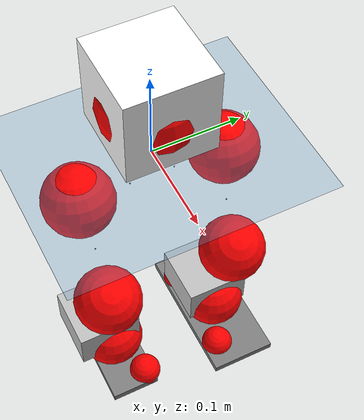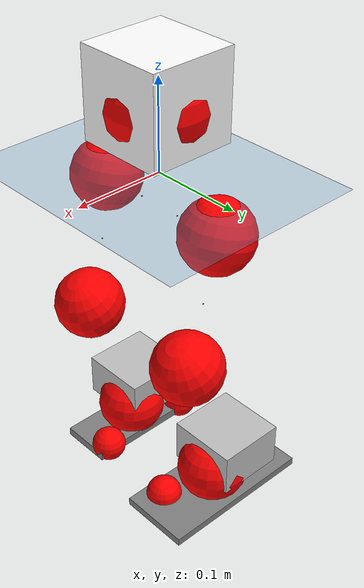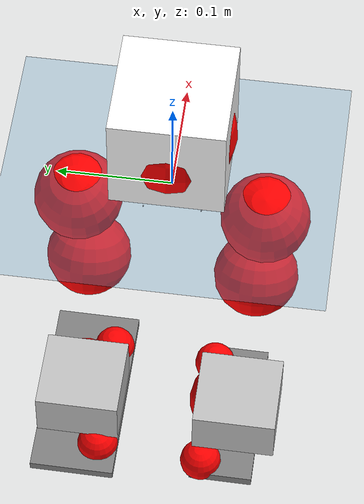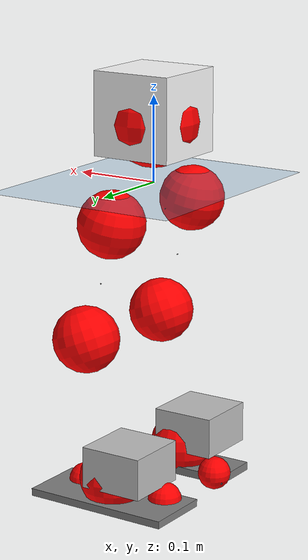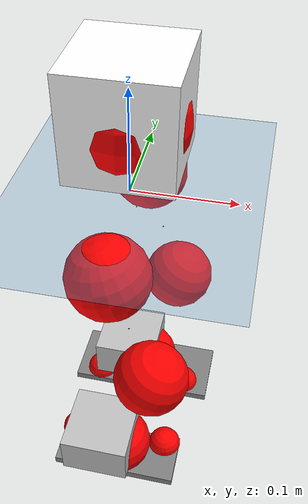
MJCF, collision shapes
<mujoco model="pi_12dof_release_v1">
  <compiler angle="radian" assetdir="assets" balanceinertia="true" inertiafromgeom="false"/>

  <option timestep="0.005" density="1.2" viscosity="2e-05"/>

  <size nkey="1"/>

  <visual>
    <quality shadowsize="8192"/>
    <map shadowclip="0.5"/>
  </visual>

  <default>
    <default class="/">
      <joint armature="0.01" damping="0.01" frictionloss="0.01"/>
      <geom contype="0" conaffinity="0" group="1" solref="-1000 -80"/>
      <site size="0.01 0.005 0.005" group="5"/>
      <general forcelimited="true" biastype="affine" gainprm="20" biasprm="0 -20 -0.5"/>
      <default class="foot">
        <geom size="0.0845 0.036 0.005" type="box" condim="6" group="4" priority="1" friction="0.9 0.2 0.2" solimp="0.015 1 0.005"/>
      </default>
      <default class="reward_collision_sphere">
        <geom group="5" rgba="1 0 0 1"/>
      </default>
    </default>
  </default>

  <asset>
    <texture type="skybox" colorspace="auto" name="//unnamed_texture_0" builtin="gradient" rgb1="0.95 0.95 0.95" rgb2="0.95 0.95 0.95" width="100" height="600"/>
    <texture type="2d" colorspace="auto" name="texplane" builtin="checker" rgb1="0.345 0.575 0.748" rgb2="0.345 0.575 0.748" markrgb="1 1 1" width="512" height="512"/>
    <material name="MatPlane" class="/" texture="texplane" texuniform="true" texrepeat="2 2" specular="0.9"/>
    <mesh name="baselink_1" class="/" file="baselink_1.STL"/>
    <mesh name="r_hip_pitch_link" class="/" file="r_hip_pitch_link.STL"/>
    <mesh name="r_hip_roll_link" class="/" file="r_hip_roll_link.STL"/>
    <mesh name="r_thigh_link" class="/" file="r_thigh_link.STL"/>
    <mesh name="r_calf_link" class="/" file="r_calf_link.STL"/>
    <mesh name="r_ankle_pitch_link" class="/" file="r_ankle_pitch_link.STL"/>
    <mesh name="r_ankle_roll_link" class="/" file="r_ankle_roll_link.STL"/>
    <mesh name="l_hip_pitch_link" class="/" file="l_hip_pitch_link.STL"/>
    <mesh name="l_hip_roll_link" class="/" file="l_hip_roll_link.STL"/>
    <mesh name="l_thigh_link" class="/" file="l_thigh_link.STL"/>
    <mesh name="l_calf_link" class="/" file="l_calf_link.STL"/>
    <mesh name="l_ankle_pitch_link" class="/" file="l_ankle_pitch_link.STL"/>
    <mesh name="l_ankle_roll_link" class="/" file="l_ankle_roll_link.STL"/>
  </asset>

  <worldbody>
    <geom name="floor" class="/" size="100 100 0.125" type="plane" group="0" material="MatPlane"/>
    <light name="toplight_shadow" class="/" pos="0 0 5" dir="0.0990148 0.0990148 -0.990148" type="directional" ambient="0.04 0.04 0.04" diffuse="0.55 0.55 0.55" specular="0.12 0.12 0.12"/>
    <light name="toplight_fill" class="/" pos="0 0 5" dir="0.0990148 0.0990148 -0.990148" type="directional" castshadow="false" ambient="0.04 0.04 0.04" diffuse="0.3 0.3 0.3" specular="0.08 0.08 0.08"/>
    <body name="trunk" pos="0.000845688 -0.000860597 -0.00264384" quat="1 -0.000347995 -8.39866e-05 0.000199469">
      <inertial pos="0.000587698 0.00262959 0.0433686" quat="0.701223 0.00739657 0.00830529 0.712855" mass="2.07011" diaginertia="0.00405595 0.0114228 0.00564144"/>
      <joint name="//unnamed_joint_0" type="free"/>
      <geom name="//unnamed_geom_1" class="/" type="mesh" density="0" rgba="1 1 1 1" mesh="baselink_1"/>
      <geom name="//unnamed_geom_2" class="/" size="0.0487651 0.0487651 0.0487651" pos="0 0 0.0845828" type="box" rgba="1 1 1 1"/>
      <geom name="//unnamed_geom_3" class="reward_collision_sphere" size="0.0536416" pos="0 0 0.0740099"/>
      <site name="imu" class="/" pos="-0.00530198 0.000914996 0.000851036" size="0.00975302"/>
      <camera name="track" class="/" pos="0 -2.0837 0" quat="0.707107 0.707107 0 0" mode="trackcom"/>
      <camera name="ego_camera" class="/" pos="0.0620077 0 0.190311" quat="-0.5 -0.5 0.5 0.5"/>
      <body name="r_hip_pitch_link" pos="-0.00019451 -0.0242464 -0.0336647" quat="0.992227 -0.00015669 -0.124441 0.000560473">
        <inertial pos="0.000203824 -0.0572509 0.000891357" quat="-0.0249367 0.69182 -0.0249262 0.721208" mass="0.35058" diaginertia="4.29605e-05 0.000120441 0.00011303"/>
        <joint name="r_hip_pitch_joint" class="/" pos="0 0 0" axis="-0.00867402 -0.999895 0.0115652" stiffness="0.0119625" range="-1.72306 1.28114" armature="0.00943545" damping="0" frictionloss="0.00864145"/>
        <geom name="//unnamed_geom_4" class="/" type="mesh" density="0" rgba="0.75294 0.75294 0.75294 1" mesh="r_hip_pitch_link"/>
        <geom name="//unnamed_geom_5" class="/" size="0.000487651 0.000487651 0.000487651" type="box" rgba="0.75294 0.75294 0.75294 1"/>
        <body name="r_hip_roll_link" pos="-0.00101633 -0.0562968 0.00302783" quat="0.999998 0.0010032 0.000792805 -0.00124474">
          <inertial pos="0.00177448 -0.00487218 -0.06895" quat="0.697572 -0.0819548 -0.0870517 0.70647" mass="0.364748" diaginertia="0.000130008 0.000325268 0.000167455"/>
          <joint name="r_hip_roll_joint" class="/" pos="0 0 0" axis="-0.999957 0.00917645 -0.000905506" range="-0.133061 0.501943" armature="0.00959604" damping="0.00443774" frictionloss="0.00925845"/>
          <geom name="//unnamed_geom_6" class="/" type="mesh" density="0" rgba="0.75294 0.75294 0.75294 1" mesh="r_hip_roll_link"/>
          <geom name="//unnamed_geom_7" class="/" size="0.000487651 0.000487651 0.000487651" type="box" rgba="0.75294 0.75294 0.75294 1"/>
          <geom name="//unnamed_geom_8" class="reward_collision_sphere" size="0.0390121"/>
          <body name="r_thigh_link" pos="-0.00191824 0.00686671 -0.0718423" quat="1 0.000484374 -8.87044e-05 -0.000835147">
            <inertial pos="0.00206632 0.000396729 -0.0499129" quat="0.74369 0.668468 0.00529676 -0.00695189" mass="0.106407" diaginertia="4.7807e-05 0.000111425 7.44061e-05"/>
            <joint name="r_thigh_joint" class="/" pos="0 0 0" axis="0.00471305 0.00566415 -0.999973" stiffness="0.00801845" range="-0.243805 0.649871" armature="0.00933174" damping="0.0223871" frictionloss="0.00844289"/>
            <geom name="//unnamed_geom_9" class="/" type="mesh" density="0" rgba="0.75294 0.75294 0.75294 1" mesh="r_thigh_link"/>
            <geom name="//unnamed_geom_10" class="/" size="0.000487651 0.000487651 0.000487651" type="box" rgba="0.75294 0.75294 0.75294 1"/>
            <body name="r_calf_link" pos="0.0034053 0.00102211 -0.0758069" quat="0.947414 -0.000126152 0.320008 -0.000905025">
              <inertial pos="-0.00321433 0.00172721 -0.075678" quat="0.999928 0.00218789 -0.00186985 0.0116122" mass="0.723871" diaginertia="0.00133855 0.00429269 0.000235839"/>
              <joint name="r_calf_joint" class="/" pos="0 0 0" axis="-0.0151616 -0.999857 0.00748921" stiffness="0.000932817" range="-1.68804 0.606663" armature="0.00986021" damping="0" frictionloss="0.00880614"/>
              <geom name="//unnamed_geom_11" class="/" type="mesh" density="0" rgba="0.75294 0.75294 0.75294 1" mesh="r_calf_link"/>
              <geom name="//unnamed_geom_12" class="/" size="0.000487651 0.000487651 0.000487651" type="box" rgba="0.75294 0.75294 0.75294 1"/>
              <geom name="//unnamed_geom_13" class="reward_collision_sphere" size="0.0390121"/>
              <body name="r_ankle_pitch_link" pos="-0.00262917 0.00627221 -0.146616" quat="0.980064 -8.58135e-05 -0.198681 -2.01788e-05">
                <inertial pos="0.0056476 0.00265754 -0.00235064" quat="-0.00545209 0.712239 0.00529971 0.701896" mass="0.168494" diaginertia="0.000117515 0.000271523 0.000157889"/>
                <joint name="r_ankle_pitch_joint" class="/" pos="0 0 0" axis="0.01247 -0.999919 -0.00269669" range="-1.31386 0.54454" armature="0.00933446" damping="0.0115079" frictionloss="0.0089917"/>
                <geom name="//unnamed_geom_14" class="/" type="mesh" density="0" rgba="0.75294 0.75294 0.75294 1" mesh="r_ankle_pitch_link"/>
                <geom name="//unnamed_geom_15" class="/" size="0.0380368 0.0390121 0.0243825" type="box" rgba="0.75294 0.75294 0.75294 1"/>
                <body name="r_ankle_roll_link" pos="0.058968 0.00893859 -0.00178339" quat="1 0.000585662 -0.000610997 -0.000489238">
                  <inertial pos="-0.0211703 0.00123185 -0.0148376" quat="0.561231 0.420955 0.433029 0.565953" mass="0.460938" diaginertia="0.000405711 0.00122101 0.000352491"/>
                  <joint name="r_ankle_roll_joint" class="/" pos="0 0 0" axis="-0.999762 -0.00965969 -0.019541" range="-0.221163 0.144513" armature="0.00934543" damping="0.0109894" frictionloss="0.0110419"/>
                  <geom name="//unnamed_geom_16" class="/" type="mesh" density="0" rgba="0.75294 0.75294 0.75294 1" mesh="r_ankle_roll_link"/>
                  <geom name="//unnamed_geom_17" class="/" type="mesh" rgba="0.75294 0.75294 0.75294 1" mesh="r_ankle_roll_link"/>
                  <geom name="right_foot" class="foot" size="0.0728881 0.0298124 0.00479164" pos="-0.0421653 0 -0.0465205"/>
                  <geom name="//unnamed_geom_19" class="reward_collision_sphere" size="0.0390121" pos="-0.0413385 0 -0.0211457"/>
                  <geom name="//unnamed_geom_20" class="reward_collision_sphere" size="0.019506" pos="0.0124015 0.020837 -0.0422914"/>
                  <geom name="//unnamed_geom_21" class="reward_collision_sphere" size="0.019506" pos="-0.0992124 0.020837 -0.0422914"/>
                  <site name="right_foot" class="foot" pos="-0.0421653 0 -0.0465205" size="0.00975302"/>
                </body>
              </body>
            </body>
          </body>
        </body>
      </body>
      <body name="l_hip_pitch_link" pos="-0.000645635 0.0267001 -0.0347621" quat="0.992196 6.20286e-05 -0.124684 -4.08471e-05">
        <inertial pos="0.00325907 0.0534527 0.00128907" quat="-0.0318853 0.700321 0.0368166 0.712165" mass="0.366063" diaginertia="4.66703e-05 0.000121763 0.000131498"/>
        <joint name="l_hip_pitch_joint" class="/" pos="0 0 0" axis="-0.0025184 0.999948 0.00992283" range="-1.21304 1.72947" armature="0.00985707" damping="0.013401" frictionloss="0.0101904"/>
        <geom name="//unnamed_geom_22" class="/" type="mesh" density="0" rgba="0.75294 0.75294 0.75294 1" mesh="l_hip_pitch_link"/>
        <geom name="//unnamed_geom_23" class="/" size="0.000487651 0.000487651 0.000487651" type="box" rgba="0.75294 0.75294 0.75294 1"/>
        <body name="l_hip_roll_link" pos="0.00272824 0.0567038 0.00349943" quat="0.999999 -0.000950255 0.000621299 -3.12181e-05">
          <inertial pos="0.0030537 -0.00382504 -0.0625372" quat="0.699303 -0.0751124 -0.0779817 0.706578" mass="0.371729" diaginertia="0.0001252 0.000345701 0.000165654"/>
          <joint name="l_hip_roll_joint" class="/" pos="0 0 0" axis="-0.999998 0.0010523 0.00148383" stiffness="0.00920403" range="-0.488805 0.157426" armature="0.00825759" damping="0" frictionloss="0.00893056"/>
          <geom name="//unnamed_geom_24" class="/" type="mesh" density="0" rgba="0.75294 0.75294 0.75294 1" mesh="l_hip_roll_link"/>
          <geom name="//unnamed_geom_25" class="/" size="0.000487651 0.000487651 0.000487651" type="box" rgba="0.75294 0.75294 0.75294 1"/>
          <geom name="//unnamed_geom_26" class="reward_collision_sphere" size="0.0390121"/>
          <body name="l_thigh_link" pos="-0.0022822 -0.00050767 -0.072872" quat="1 0.000303892 -0.000197436 -0.000790314">
            <inertial pos="-0.000129353 -0.00190165 -0.0529217" quat="0.67525 0.737587 0.00186124 0.000193248" mass="0.103586" diaginertia="4.91903e-05 0.000118658 7.85776e-05"/>
            <joint name="l_thigh_joint" class="/" pos="0 0 0" axis="0.00241006 -0.00108814 -0.999997" stiffness="0.00118764" range="-0.554115 0.338044" armature="0.00880969" damping="0.00605125" frictionloss="0.0110377"/>
            <geom name="//unnamed_geom_27" class="/" type="mesh" density="0" rgba="0.75294 0.75294 0.75294 1" mesh="l_thigh_link"/>
            <geom name="//unnamed_geom_28" class="/" size="0.000487651 0.000487651 0.000487651" type="box" rgba="0.75294 0.75294 0.75294 1"/>
            <body name="l_calf_link" pos="0.00268537 0.000719977 -0.0718765" quat="0.947591 0.00182994 0.31948 -0.000630355">
              <inertial pos="0.00111279 0.000360133 -0.0784459" quat="0.999979 0.00395318 -0.0041906 0.00297458" mass="0.732264" diaginertia="0.00132791 0.00432493 0.000213331"/>
              <joint name="l_calf_joint" class="/" pos="0 0 0" axis="0.00272689 0.999976 -0.00629992" stiffness="0.016521" range="-0.670511 1.60416" armature="0.00867235" damping="0.00303881" frictionloss="0.0110335"/>
              <geom name="//unnamed_geom_29" class="/" type="mesh" density="0" rgba="0.75294 0.75294 0.75294 1" mesh="l_calf_link"/>
              <geom name="//unnamed_geom_30" class="/" size="0.000487651 0.000487651 0.000487651" type="box" rgba="0.75294 0.75294 0.75294 1"/>
              <geom name="//unnamed_geom_31" class="reward_collision_sphere" size="0.0390121"/>
              <body name="l_ankle_pitch_link" pos="-0.000570785 0.000221433 -0.15147" quat="0.980079 0.000453248 -0.198605 -0.00105735">
                <inertial pos="0.0032524 -0.00108826 -0.00223432" quat="0.00211664 0.711894 0.00646242 0.702254" mass="0.173784" diaginertia="0.00012064 0.000271389 0.000161179"/>
                <joint name="l_ankle_pitch_joint" class="/" pos="0 0 0" axis="-0.00453488 0.99999 0.000369814" range="-0.555952 1.31806" armature="0.0104858" damping="0.00056056" frictionloss="0.00914398"/>
                <geom name="//unnamed_geom_32" class="/" type="mesh" density="0" rgba="0.75294 0.75294 0.75294 1" mesh="l_ankle_pitch_link"/>
                <geom name="//unnamed_geom_33" class="/" size="0.0380368 0.0390121 0.0243825" type="box" rgba="0.75294 0.75294 0.75294 1"/>
                <body name="l_ankle_roll_link" pos="0.0629184 0.00172543 0.00102252" quat="1 8.43326e-06 -0.000109475 -0.00030938">
                  <inertial pos="-0.0220726 0.000357406 -0.0142981" quat="0.558908 0.430514 0.435224 0.559338" mass="0.487652" diaginertia="0.000452684 0.00130234 0.000370577"/>
                  <joint name="l_ankle_roll_joint" class="/" pos="0 0 0" axis="-1 -0.000720901 0.00048652" range="-0.214682 0.136115" armature="0.00893491" damping="0.0154007" frictionloss="0.00849715"/>
                  <geom name="//unnamed_geom_34" class="/" type="mesh" density="0" rgba="0.75294 0.75294 0.75294 1" mesh="l_ankle_roll_link"/>
                  <geom name="//unnamed_geom_35" class="/" type="mesh" rgba="0.75294 0.75294 0.75294 1" mesh="l_ankle_roll_link"/>
                  <geom name="left_foot" class="foot" size="0.0888526 0.0399577 0.0043619" pos="-0.0421653 0 -0.0465205"/>
                  <geom name="//unnamed_geom_37" class="reward_collision_sphere" size="0.0390121" pos="-0.0413385 0 -0.0211457"/>
                  <geom name="//unnamed_geom_38" class="reward_collision_sphere" size="0.019506" pos="0.0124015 -0.020837 -0.0422914"/>
                  <geom name="//unnamed_geom_39" class="reward_collision_sphere" size="0.019506" pos="-0.0992124 -0.020837 -0.0422914"/>
                  <site name="left_foot" class="foot" pos="-0.0421653 0 -0.0465205" size="0.00975302"/>
                </body>
              </body>
            </body>
          </body>
        </body>
      </body>
    </body>
  </worldbody>

  <contact>
    <pair class="/" geom1="floor" geom2="right_foot" name="//unnamed_contact_1"/>
    <pair class="/" geom1="floor" geom2="left_foot" name="//unnamed_contact_0"/>
  </contact>

  <actuator>
    <general name="r_hip_pitch_joint" class="/" joint="r_hip_pitch_joint" forcerange="-18.6876 18.6876" gainprm="18.5173" biasprm="0 -18.5173 -0.543956"/>
    <general name="r_hip_roll_joint" class="/" joint="r_hip_roll_joint" forcerange="-17.8993 17.8993" gainprm="18.5173" biasprm="0 -18.5173 -0.543956"/>
    <general name="r_thigh_joint" class="/" joint="r_thigh_joint" forcerange="-20.3814 20.3814" gainprm="18.5173" biasprm="0 -18.5173 -0.543956"/>
    <general name="r_calf_joint" class="/" joint="r_calf_joint" forcerange="-20.7843 20.7843" gainprm="18.5173" biasprm="0 -18.5173 -0.543956"/>
    <general name="r_ankle_pitch_joint" class="/" joint="r_ankle_pitch_joint" forcerange="-20.3567 20.3567" gainprm="18.5173" biasprm="0 -18.5173 -0.543956"/>
    <general name="r_ankle_roll_joint" class="/" joint="r_ankle_roll_joint" forcerange="-20.3968 20.3968" gainprm="18.5173" biasprm="0 -18.5173 -0.543956"/>
    <general name="l_hip_pitch_joint" class="/" joint="l_hip_pitch_joint" forcerange="-22.2849 22.2849" gainprm="18.5173" biasprm="0 -18.5173 -0.543956"/>
    <general name="l_hip_roll_joint" class="/" joint="l_hip_roll_joint" forcerange="-20.9863 20.9863" gainprm="18.5173" biasprm="0 -18.5173 -0.543956"/>
    <general name="l_thigh_joint" class="/" joint="l_thigh_joint" forcerange="-20.3666 20.3666" gainprm="18.5173" biasprm="0 -18.5173 -0.543956"/>
    <general name="l_calf_joint" class="/" joint="l_calf_joint" forcerange="-18.9743 18.9743" gainprm="18.5173" biasprm="0 -18.5173 -0.543956"/>
    <general name="l_ankle_pitch_joint" class="/" joint="l_ankle_pitch_joint" forcerange="-20.6853 20.6853" gainprm="18.5173" biasprm="0 -18.5173 -0.543956"/>
    <general name="l_ankle_roll_joint" class="/" joint="l_ankle_roll_joint" forcerange="-20.2381 20.2381" gainprm="18.5173" biasprm="0 -18.5173 -0.543956"/>
  </actuator>

  <sensor>
    <gyro site="imu" name="imu_angular_velocity"/>
    <velocimeter site="imu" name="imu_linear_velocity"/>
    <framelinvel objtype="site" objname="left_foot" name="left_foot_global_linear_velocity"/>
    <framelinvel objtype="site" objname="right_foot" name="right_foot_global_linear_velocity"/>
  </sensor>

  <keyframe>
    <key name="home" qpos="0 0 0.291 1 0 0 0 0.4 0 0 -0.8 0.4 0 -0.4 0 0 0.8 -0.4 0"/>
  </keyframe>
</mujoco>
